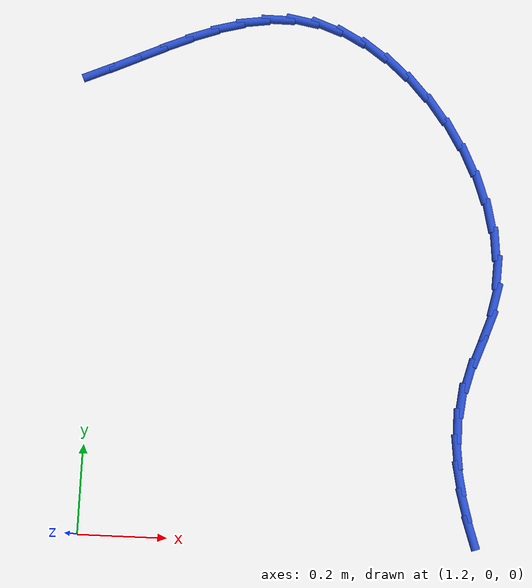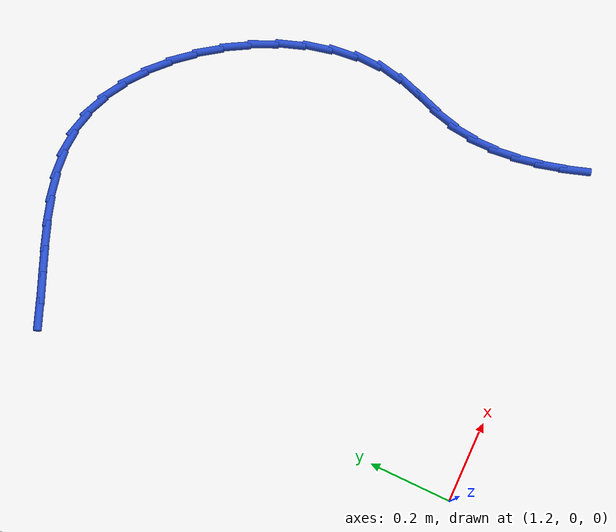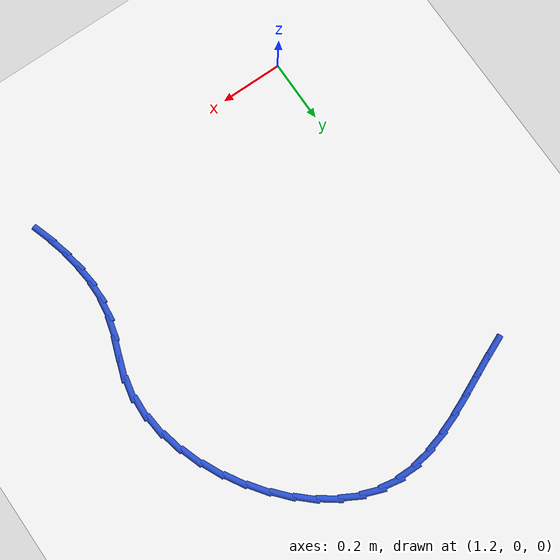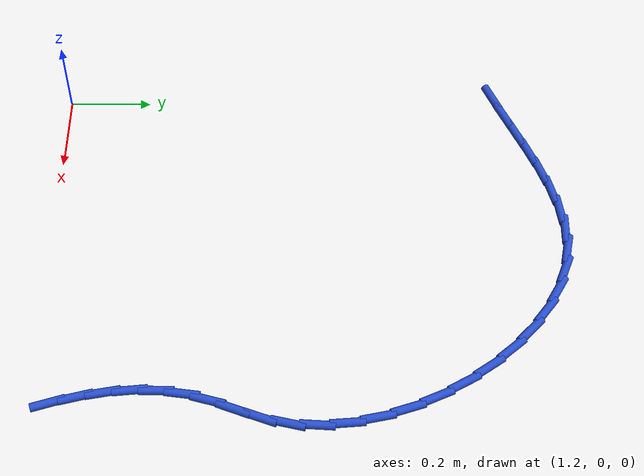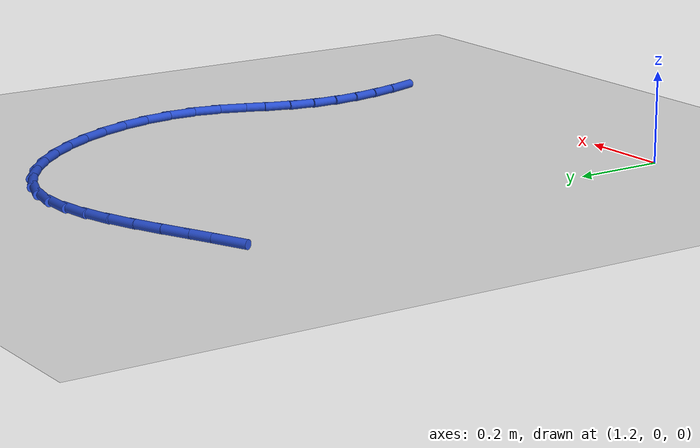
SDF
<sdf version="1.6">
 <world name="default">
  <model name="ground_plane">
   <static>1</static>
   <link name="link">
    <collision name="collision">
     <geometry><plane><normal>0 0 1</normal><size>100 100</size></plane></geometry>
     <surface><friction><ode><mu>100</mu><mu2>50</mu2></ode></friction></surface>
    </collision>
    <visual name="visual">
     <cast_shadows>0</cast_shadows>
     <geometry><plane><normal>0 0 1</normal><size>100 100</size></plane></geometry>
     <material>
      <script><uri>file://media/materials/scripts/gazebo.material</uri><name>Gazebo/WhiteGlow</name></script>
     </material>
    </visual>
   </link>
  </model>
  <model name="line">
   <link name="link_28">
    <pose>1.1767373861426509 1.0729696826075374 0.01 0 1.57 0.41270898382088134</pose>
    <collision name="collision">
     <geometry><cylinder><radius>0.01</radius><length>0.08</length></cylinder></geometry>
    </collision>
    <visual name="visual">
     <material>
      <script><name>Gazebo/Blue</name><uri>file://media/materials/scripts/gazebo.material</uri></script>
     </material>
     <geometry><cylinder><radius>0.01</radius><length>0.08</length></cylinder></geometry>
    </visual>
   </link>
   <link name="link_29">
    <pose>1.2364342164001931 1.0991082818908364 0.01 0 1.57 0.43001129352824696</pose>
    <collision name="collision">
     <geometry><cylinder><radius>0.01</radius><length>0.08</length></cylinder></geometry>
    </collision>
    <visual name="visual">
     <material>
      <script><name>Gazebo/Blue</name><uri>file://media/materials/scripts/gazebo.material</uri></script>
     </material>
     <geometry><cylinder><radius>0.01</radius><length>0.08</length></cylinder></geometry>
    </visual>
   </link>
   <link name="link_30">
    <pose>1.2960607133131816 1.1264550619667226 0.01 0 1.57 0.424047988146216</pose>
    <collision name="collision">
     <geometry><cylinder><radius>0.01</radius><length>0.08</length></cylinder></geometry>
    </collision>
    <visual name="visual">
     <material>
      <script><name>Gazebo/Blue</name><uri>file://media/materials/scripts/gazebo.material</uri></script>
     </material>
     <geometry><cylinder><radius>0.01</radius><length>0.08</length></cylinder></geometry>
    </visual>
   </link>
   <link name="link_31">
    <pose>1.3555867741027345 1.1533273063774712 0.01 0 1.57 0.3943155823821256</pose>
    <collision name="collision">
     <geometry><cylinder><radius>0.01</radius><length>0.08</length></cylinder></geometry>
    </collision>
    <visual name="visual">
     <material>
      <script><name>Gazebo/Blue</name><uri>file://media/materials/scripts/gazebo.material</uri></script>
     </material>
     <geometry><cylinder><radius>0.01</radius><length>0.08</length></cylinder></geometry>
    </visual>
   </link>
   <link name="link_32">
    <pose>1.4149822959899696 1.1780422986653556 0.01 0 1.57 0.33882109188976645</pose>
    <collision name="collision">
     <geometry><cylinder><radius>0.01</radius><length>0.08</length></cylinder></geometry>
    </collision>
    <visual name="visual">
     <material>
      <script><name>Gazebo/Blue</name><uri>file://media/materials/scripts/gazebo.material</uri></script>
     </material>
     <geometry><cylinder><radius>0.01</radius><length>0.08</length></cylinder></geometry>
    </visual>
   </link>
   <link name="link_33">
    <pose>1.4742171761960068 1.1989173223726526 0.01 0 1.57 0.25438175514797184</pose>
    <collision name="collision">
     <geometry><cylinder><radius>0.01</radius><length>0.08</length></cylinder></geometry>
    </collision>
    <visual name="visual">
     <material>
      <script><name>Gazebo/Blue</name><uri>file://media/materials/scripts/gazebo.material</uri></script>
     </material>
     <geometry><cylinder><radius>0.01</radius><length>0.08</length></cylinder></geometry>
    </visual>
   </link>
   <link name="link_34">
    <pose>1.5332613119419616 1.2142696610416357 0.01 0 1.57 0.1376230017049139</pose>
    <collision name="collision">
     <geometry><cylinder><radius>0.01</radius><length>0.08</length></cylinder></geometry>
    </collision>
    <visual name="visual">
     <material>
      <script><name>Gazebo/Blue</name><uri>file://media/materials/scripts/gazebo.material</uri></script>
     </material>
     <geometry><cylinder><radius>0.01</radius><length>0.08</length></cylinder></geometry>
    </visual>
   </link>
   <link name="link_35">
    <pose>1.5920846004489546 1.2224165982145803 0.01 0 1.57 -0.012653434075644445</pose>
    <collision name="collision">
     <geometry><cylinder><radius>0.01</radius><length>0.08</length></cylinder></geometry>
    </collision>
    <visual name="visual">
     <material>
      <script><name>Gazebo/Blue</name><uri>file://media/materials/scripts/gazebo.material</uri></script>
     </material>
     <geometry><cylinder><radius>0.01</radius><length>0.08</length></cylinder></geometry>
    </visual>
   </link>
   <link name="link_36">
    <pose>1.6506569389381025 1.2216754174337607 0.01 0 1.57 -0.190081005958079</pose>
    <collision name="collision">
     <geometry><cylinder><radius>0.01</radius><length>0.08</length></cylinder></geometry>
    </collision>
    <visual name="visual">
     <material>
      <script><name>Gazebo/Blue</name><uri>file://media/materials/scripts/gazebo.material</uri></script>
     </material>
     <geometry><cylinder><radius>0.01</radius><length>0.08</length></cylinder></geometry>
    </visual>
   </link>
   <link name="link_37">
    <pose>1.7089203705345302 1.2104653094057418 0.01 0 1.57 -0.3616957485051759</pose>
    <collision name="collision">
     <geometry><cylinder><radius>0.01</radius><length>0.08</length></cylinder></geometry>
    </collision>
    <visual name="visual">
     <material>
      <script><name>Gazebo/Blue</name><uri>file://media/materials/scripts/gazebo.material</uri></script>
     </material>
     <geometry><cylinder><radius>0.01</radius><length>0.08</length></cylinder></geometry>
    </visual>
   </link>
   <link name="link_38">
    <pose>1.766403785325644 1.1887170290429554 0.01 0 1.57 -0.5089326522774684</pose>
    <collision name="collision">
     <geometry><cylinder><radius>0.01</radius><length>0.08</length></cylinder></geometry>
    </collision>
    <visual name="visual">
     <material>
      <script><name>Gazebo/Blue</name><uri>file://media/materials/scripts/gazebo.material</uri></script>
     </material>
     <geometry><cylinder><radius>0.01</radius><length>0.08</length></cylinder></geometry>
    </visual>
   </link>
   <link name="link_39">
    <pose>1.822319872130238 1.15751818713411 0.01 0 1.57 -0.635897620671907</pose>
    <collision name="collision">
     <geometry><cylinder><radius>0.01</radius><length>0.08</length></cylinder></geometry>
    </collision>
    <visual name="visual">
     <material>
      <script><name>Gazebo/Blue</name><uri>file://media/materials/scripts/gazebo.material</uri></script>
     </material>
     <geometry><cylinder><radius>0.01</radius><length>0.08</length></cylinder></geometry>
    </visual>
   </link>
   <link name="link_40">
    <pose>1.8758732918170937 1.117985765574441 0.01 0 1.57 -0.7478799757550906</pose>
    <collision name="collision">
     <geometry><cylinder><radius>0.01</radius><length>0.08</length></cylinder></geometry>
    </collision>
    <visual name="visual">
     <material>
      <script><name>Gazebo/Blue</name><uri>file://media/materials/scripts/gazebo.material</uri></script>
     </material>
     <geometry><cylinder><radius>0.01</radius><length>0.08</length></cylinder></geometry>
    </visual>
   </link>
   <link name="link_41">
    <pose>1.9262687052549978 1.0712367462591847 0.01 0 1.57 -0.8498321770201746</pose>
    <collision name="collision">
     <geometry><cylinder><radius>0.01</radius><length>0.08</length></cylinder></geometry>
    </collision>
    <visual name="visual">
     <material>
      <script><name>Gazebo/Blue</name><uri>file://media/materials/scripts/gazebo.material</uri></script>
     </material>
     <geometry><cylinder><radius>0.01</radius><length>0.08</length></cylinder></geometry>
    </visual>
   </link>
   <link name="link_42">
    <pose>1.9727107733127296 1.018388111083576 0.01 0 1.57 -0.9461486928017434</pose>
    <collision name="collision">
     <geometry><cylinder><radius>0.01</radius><length>0.08</length></cylinder></geometry>
    </collision>
    <visual name="visual">
     <material>
      <script><name>Gazebo/Blue</name><uri>file://media/materials/scripts/gazebo.material</uri></script>
     </material>
     <geometry><cylinder><radius>0.01</radius><length>0.08</length></cylinder></geometry>
    </visual>
   </link>
   <link name="link_43">
    <pose>2.014404156859075 0.9605568419428497 0.01 0 1.57 -1.0407953115428372</pose>
    <collision name="collision">
     <geometry><cylinder><radius>0.01</radius><length>0.08</length></cylinder></geometry>
    </collision>
    <visual name="visual">
     <material>
      <script><name>Gazebo/Blue</name><uri>file://media/materials/scripts/gazebo.material</uri></script>
     </material>
     <geometry><cylinder><radius>0.01</radius><length>0.08</length></cylinder></geometry>
    </visual>
   </link>
   <link name="link_44">
    <pose>2.0505535167628155 0.8988599207322417 0.01 0 1.57 -1.1375461650294907</pose>
    <collision name="collision">
     <geometry><cylinder><radius>0.01</radius><length>0.08</length></cylinder></geometry>
    </collision>
    <visual name="visual">
     <material>
      <script><name>Gazebo/Blue</name><uri>file://media/materials/scripts/gazebo.material</uri></script>
     </material>
     <geometry><cylinder><radius>0.01</radius><length>0.08</length></cylinder></geometry>
    </visual>
   </link>
   <link name="link_45">
    <pose>2.0803635138927348 0.834414329346987 0.01 0 1.57 -1.240225072787647</pose>
    <collision name="collision">
     <geometry><cylinder><radius>0.01</radius><length>0.08</length></cylinder></geometry>
    </collision>
    <visual name="visual">
     <material>
      <script><name>Gazebo/Blue</name><uri>file://media/materials/scripts/gazebo.material</uri></script>
     </material>
     <geometry><cylinder><radius>0.01</radius><length>0.08</length></cylinder></geometry>
    </visual>
   </link>
   <link name="link_46">
    <pose>2.1030388091176153 0.7683370496823214 0.01 0 1.57 -1.35288544449186</pose>
    <collision name="collision">
     <geometry><cylinder><radius>0.01</radius><length>0.08</length></cylinder></geometry>
    </collision>
    <visual name="visual">
     <material>
      <script><name>Gazebo/Blue</name><uri>file://media/materials/scripts/gazebo.material</uri></script>
     </material>
     <geometry><cylinder><radius>0.01</radius><length>0.08</length></cylinder></geometry>
    </visual>
   </link>
   <link name="link_47">
    <pose>2.1177840633062424 0.7017450636334799 0.01 0 1.57 -1.4798236897715313</pose>
    <collision name="collision">
     <geometry><cylinder><radius>0.01</radius><length>0.08</length></cylinder></geometry>
    </collision>
    <visual name="visual">
     <material>
      <script><name>Gazebo/Blue</name><uri>file://media/materials/scripts/gazebo.material</uri></script>
     </material>
     <geometry><cylinder><radius>0.01</radius><length>0.08</length></cylinder></geometry>
    </visual>
   </link>
   <link name="link_48">
    <pose>2.1238039373273967 0.6357553530956976 0.01 0 1.57 1.5163795788560892</pose>
    <collision name="collision">
     <geometry><cylinder><radius>0.01</radius><length>0.08</length></cylinder></geometry>
    </collision>
    <visual name="visual">
     <material>
      <script><name>Gazebo/Blue</name><uri>file://media/materials/scripts/gazebo.material</uri></script>
     </material>
     <geometry><cylinder><radius>0.01</radius><length>0.08</length></cylinder></geometry>
    </visual>
   </link>
   <link name="link_49">
    <pose>2.1203030920498622 0.571484899964211 0.01 0 1.57 1.3521772635404692</pose>
    <collision name="collision">
     <geometry><cylinder><radius>0.01</radius><length>0.08</length></cylinder></geometry>
    </collision>
    <visual name="visual">
     <material>
      <script><name>Gazebo/Blue</name><uri>file://media/materials/scripts/gazebo.material</uri></script>
     </material>
     <geometry><cylinder><radius>0.01</radius><length>0.08</length></cylinder></geometry>
    </visual>
   </link>
   <link name="link_50">
    <pose>2.1066429663379247 0.5099998511988064 0.01 0 1.57 1.2307169794445667</pose>
    <collision name="collision">
     <geometry><cylinder><radius>0.01</radius><length>0.08</length></cylinder></geometry>
    </collision>
    <visual name="visual">
     <material>
      <script><name>Gazebo/Blue</name><uri>file://media/materials/scripts/gazebo.material</uri></script>
     </material>
     <geometry><cylinder><radius>0.01</radius><length>0.08</length></cylinder></geometry>
    </visual>
   </link>
   <link name="link_51">
    <pose>2.085832283976609 0.45118372929139966 0.01 0 1.57 1.216046284878785</pose>
    <collision name="collision">
     <geometry><cylinder><radius>0.01</radius><length>0.08</length></cylinder></geometry>
    </collision>
    <visual name="visual">
     <material>
      <script><name>Gazebo/Blue</name><uri>file://media/materials/scripts/gazebo.material</uri></script>
     </material>
     <geometry><cylinder><radius>0.01</radius><length>0.08</length></cylinder></geometry>
    </visual>
   </link>
   <link name="link_52">
    <pose>2.0645501979689596 0.39372992777629423 0.01 0 1.57 1.3109962296620759</pose>
    <collision name="collision">
     <geometry><cylinder><radius>0.01</radius><length>0.08</length></cylinder></geometry>
    </collision>
    <visual name="visual">
     <material>
      <script><name>Gazebo/Blue</name><uri>file://media/materials/scripts/gazebo.material</uri></script>
     </material>
     <geometry><cylinder><radius>0.01</radius><length>0.08</length></cylinder></geometry>
    </visual>
   </link>
   <link name="link_53">
    <pose>2.049295510966246 0.3363399489572153 0.01 0 1.57 1.4486928926477267</pose>
    <collision name="collision">
     <geometry><cylinder><radius>0.01</radius><length>0.08</length></cylinder></geometry>
    </collision>
    <visual name="visual">
     <material>
      <script><name>Gazebo/Blue</name><uri>file://media/materials/scripts/gazebo.material</uri></script>
     </material>
     <geometry><cylinder><radius>0.01</radius><length>0.08</length></cylinder></geometry>
    </visual>
   </link>
   <link name="link_54">
    <pose>2.042196311783354 0.27848831789805617 0.01 0 1.57 -1.5679935981623985</pose>
    <collision name="collision">
     <geometry><cylinder><radius>0.01</radius><length>0.08</length></cylinder></geometry>
    </collision>
    <visual name="visual">
     <material>
      <script><name>Gazebo/Blue</name><uri>file://media/materials/scripts/gazebo.material</uri></script>
     </material>
     <geometry><cylinder><radius>0.01</radius><length>0.08</length></cylinder></geometry>
    </visual>
   </link>
   <link name="link_55">
    <pose>2.042359723784037 0.22018386026870718 0.01 0 1.57 -1.4610386912662179</pose>
    <collision name="collision">
     <geometry><cylinder><radius>0.01</radius><length>0.08</length></cylinder></geometry>
    </collision>
    <visual name="visual">
     <material>
      <script><name>Gazebo/Blue</name><uri>file://media/materials/scripts/gazebo.material</uri></script>
     </material>
     <geometry><cylinder><radius>0.01</radius><length>0.08</length></cylinder></geometry>
    </visual>
   </link>
   <link name="link_56">
    <pose>2.0488326603662026 0.16144605072586574 0.01 0 1.57 -1.3734164177339254</pose>
    <collision name="collision">
     <geometry><cylinder><radius>0.01</radius><length>0.08</length></cylinder></geometry>
    </collision>
    <visual name="visual">
     <material>
      <script><name>Gazebo/Blue</name><uri>file://media/materials/scripts/gazebo.material</uri></script>
     </material>
     <geometry><cylinder><radius>0.01</radius><length>0.08</length></cylinder></geometry>
    </visual>
   </link>
   <link name="link_57">
    <pose>2.060662034927757 0.10229436392623087 0.01 0 1.57 -1.3046555214940951</pose>
    <collision name="collision">
     <geometry><cylinder><radius>0.01</radius><length>0.08</length></cylinder></geometry>
    </collision>
    <visual name="visual">
     <material>
      <script><name>Gazebo/Blue</name><uri>file://media/materials/scripts/gazebo.material</uri></script>
     </material>
     <geometry><cylinder><radius>0.01</radius><length>0.08</length></cylinder></geometry>
    </visual>
   </link>
   <link name="link_58">
    <pose>2.07689476086661 0.04274827452650021 0.01 0 1.57 -1.253418080978391</pose>
    <collision name="collision">
     <geometry><cylinder><radius>0.01</radius><length>0.08</length></cylinder></geometry>
    </collision>
    <visual name="visual">
     <material>
      <script><name>Gazebo/Blue</name><uri>file://media/materials/scripts/gazebo.material</uri></script>
     </material>
     <geometry><cylinder><radius>0.01</radius><length>0.08</length></cylinder></geometry>
    </visual>
   </link>
  </model>
 </world>
</sdf>
